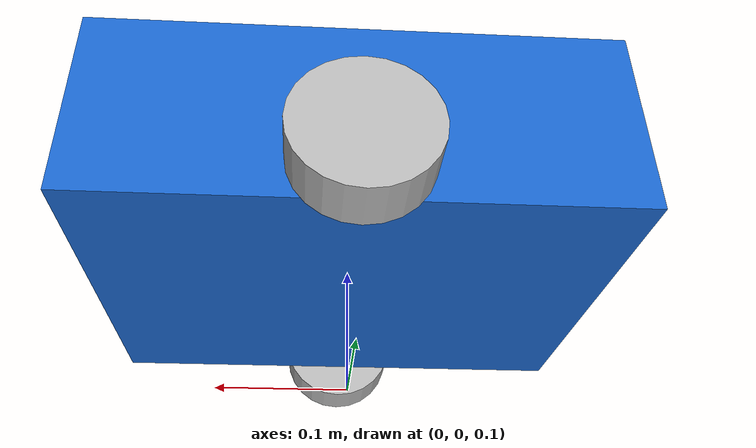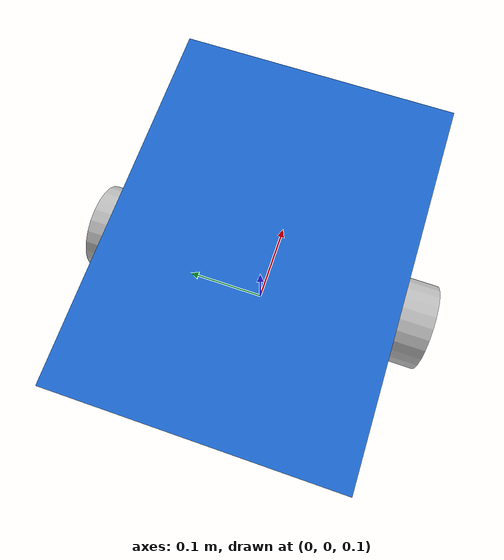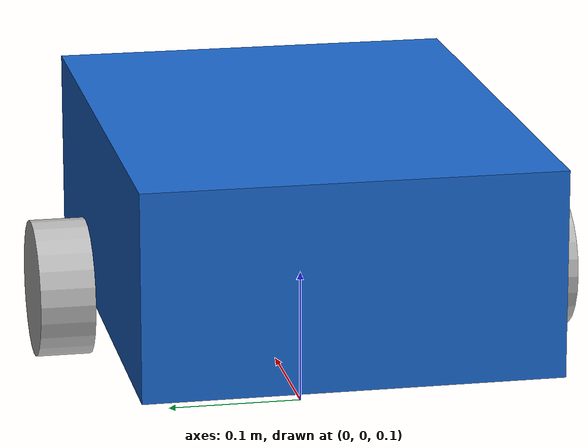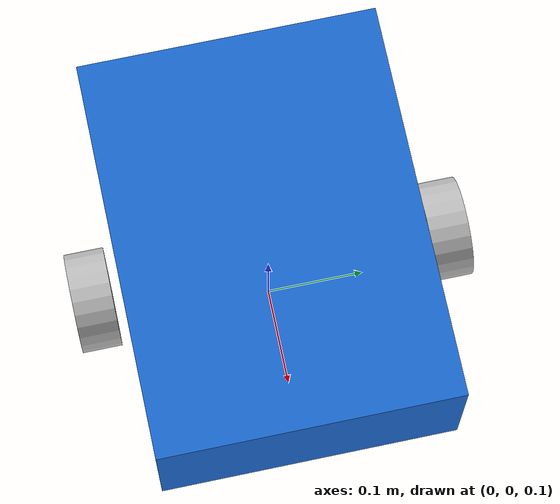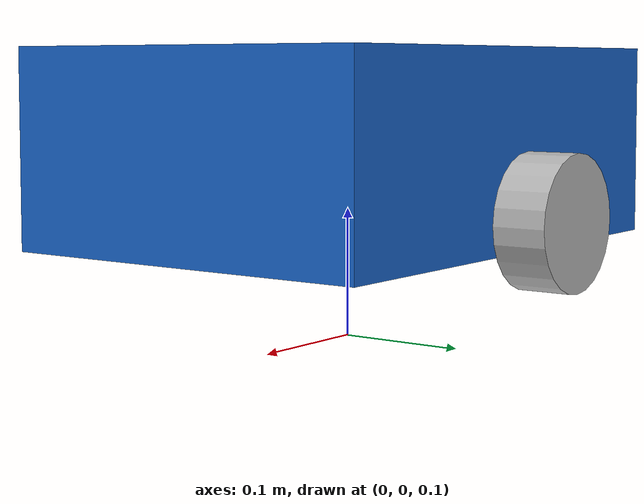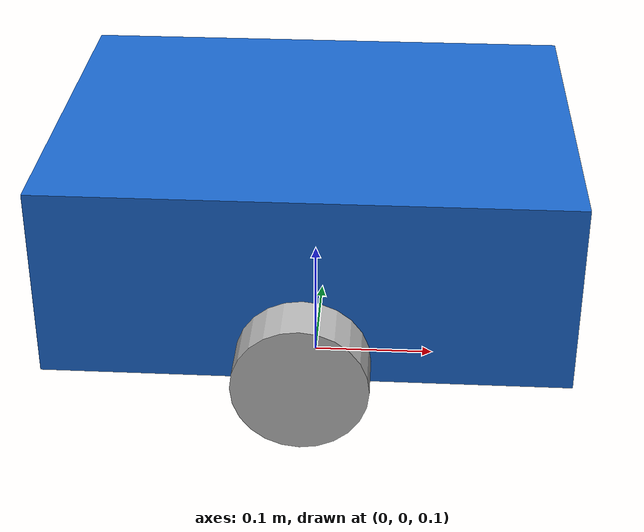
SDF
<?xml version="1.0" ?>
<!-- Lesson 11 — Gazebo Fortress (Ignition Gazebo 6) 差速小车 -->
<sdf version="1.8">
  <model name="simple_diff_robot">
    <pose>0 0 0.15 0 0 0</pose>
    <static>false</static>

    <link name="chassis">
      <pose>0 0 0.1 0 0 0</pose>
      <inertial>
        <mass>5.0</mass>
        <inertia>
          <ixx>0.05</ixx><iyy>0.08</iyy><izz>0.1</izz>
          <ixy>0</ixy><ixz>0</ixz><iyz>0</iyz>
        </inertia>
      </inertial>
      <collision name="collision">
        <geometry><box><size>0.4 0.3 0.15</size></box></geometry>
      </collision>
      <visual name="visual">
        <geometry><box><size>0.4 0.3 0.15</size></box></geometry>
        <material>
          <ambient>0.1 0.4 0.8 1</ambient>
          <diffuse>0.1 0.4 0.8 1</diffuse>
        </material>
      </visual>
    </link>

    <link name="left_wheel">
      <pose>0 0.18 0.05 0 1.5707 1.5707</pose>
      <inertial>
        <mass>0.5</mass>
        <inertia>
          <ixx>0.001</ixx><iyy>0.001</iyy><izz>0.001</izz>
          <ixy>0</ixy><ixz>0</ixz><iyz>0</iyz>
        </inertia>
      </inertial>
      <collision name="collision">
        <geometry><cylinder><radius>0.05</radius><length>0.04</length></cylinder></geometry>
      </collision>
      <visual name="visual">
        <geometry><cylinder><radius>0.05</radius><length>0.04</length></cylinder></geometry>
      </visual>
    </link>

    <link name="right_wheel">
      <pose>0 -0.18 0.05 0 1.5707 1.5707</pose>
      <inertial>
        <mass>0.5</mass>
        <inertia>
          <ixx>0.001</ixx><iyy>0.001</iyy><izz>0.001</izz>
          <ixy>0</ixy><ixz>0</ixz><iyz>0</iyz>
        </inertia>
      </inertial>
      <collision name="collision">
        <geometry><cylinder><radius>0.05</radius><length>0.04</length></cylinder></geometry>
      </collision>
      <visual name="visual">
        <geometry><cylinder><radius>0.05</radius><length>0.04</length></cylinder></geometry>
      </visual>
    </link>

    <joint name="left_wheel_joint" type="revolute">
      <parent>chassis</parent>
      <child>left_wheel</child>
      <axis>
        <xyz>0 1 0</xyz>
        <limit><lower>-1.79769e+308</lower><upper>1.79769e+308</upper></limit>
      </axis>
    </joint>

    <joint name="right_wheel_joint" type="revolute">
      <parent>chassis</parent>
      <child>right_wheel</child>
      <axis>
        <xyz>0 1 0</xyz>
        <limit><lower>-1.79769e+308</lower><upper>1.79769e+308</upper></limit>
      </axis>
    </joint>

    <plugin
      filename="ignition-gazebo-diff-drive-system"
      name="ignition::gazebo::systems::DiffDrive">
      <left_joint>left_wheel_joint</left_joint>
      <right_joint>right_wheel_joint</right_joint>
      <wheel_separation>0.36</wheel_separation>
      <wheel_radius>0.05</wheel_radius>
      <odom_publish_frequency>50</odom_publish_frequency>
      <topic>/model/simple_diff_robot/cmd_vel</topic>
      <odom_topic>/model/simple_diff_robot/odometry</odom_topic>
      <frame_id>odom</frame_id>
      <child_frame_id>chassis</child_frame_id>
    </plugin>
  </model>
</sdf>
